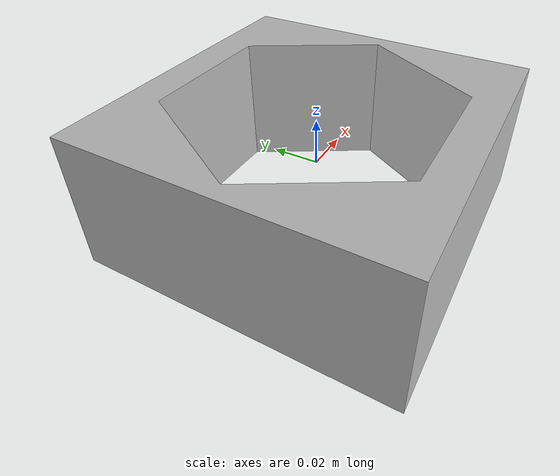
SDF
<?xml version="1.0" ?>
<sdf version='1.4'>
  <model name="6hole">
      <static>0</static>
      <link name='link'>
        <inertial>
          <mass>0.25</mass>
          <inertia>
            <ixx>0.000041667</ixx>
            <ixy>0.000000</ixy>
            <ixz>0.000000</ixz>
            <iyy>0.000041667</iyy>
            <iyz>0.000000</iyz>
            <izz>0.000041667</izz>
          </inertia>
        </inertial>
        <visual name='visual'>
          <geometry>
            <mesh>
              <uri>model://6hole/meshes/6hole.dae</uri>
	          <scale> 1.5 1.5 1 </scale>
            </mesh>
          </geometry>
        </visual>

        <collision name='collision'>
          <geometry>
            <mesh>
              <uri>model://6hole/meshes/6hole.dae</uri>
	          <scale> 1.5 1.5 1 </scale>
            </mesh>
          </geometry>
          <surface>
            <friction>
              <ode>
                <mu>30.0</mu>
                <mu2>30.0</mu2>
              </ode>
            </friction>
            <contact>
              <ode>
                <kp>1000000.0</kp>
                <kd>100.0</kd>
                <max_vel>1.0</max_vel>
                <min_depth>0.0025</min_depth>
              </ode>
            </contact>
          </surface>
        </collision>
        <velocity_decay>
          <linear>0.000000</linear>
          <angular>0.000000</angular>
        </velocity_decay>
        <self_collide>0</self_collide>
        <kinematic>0</kinematic>
        <gravity>1</gravity>
      </link>
  </model>
</sdf>
